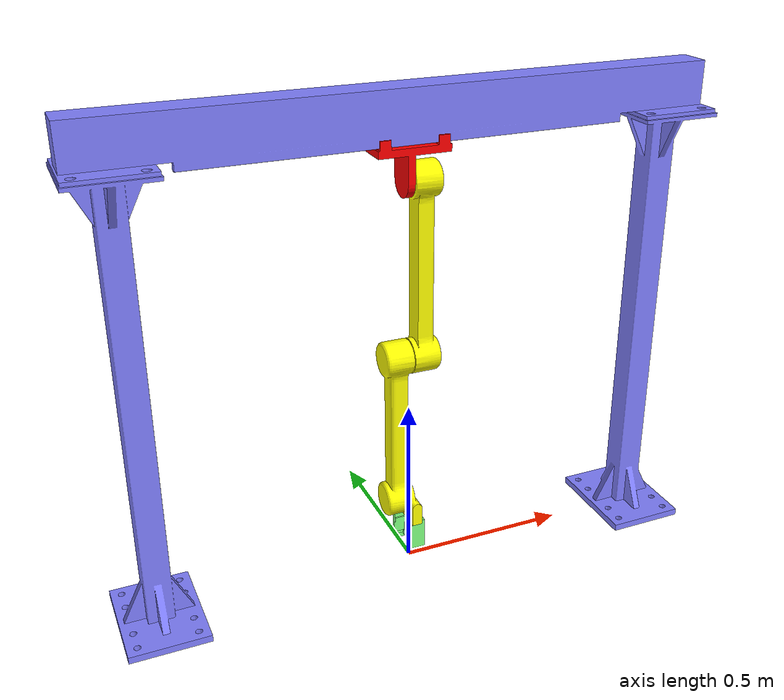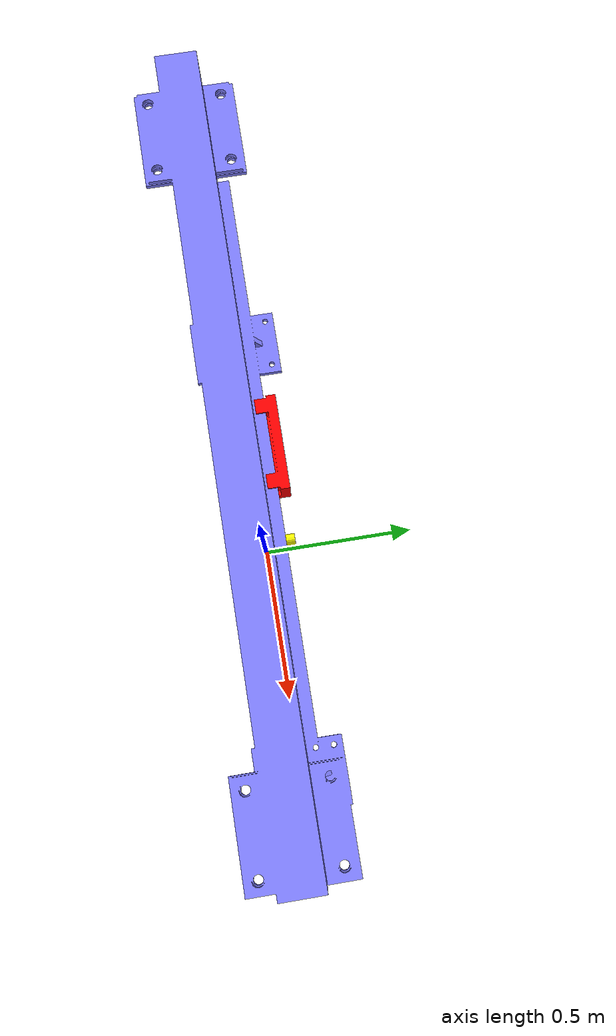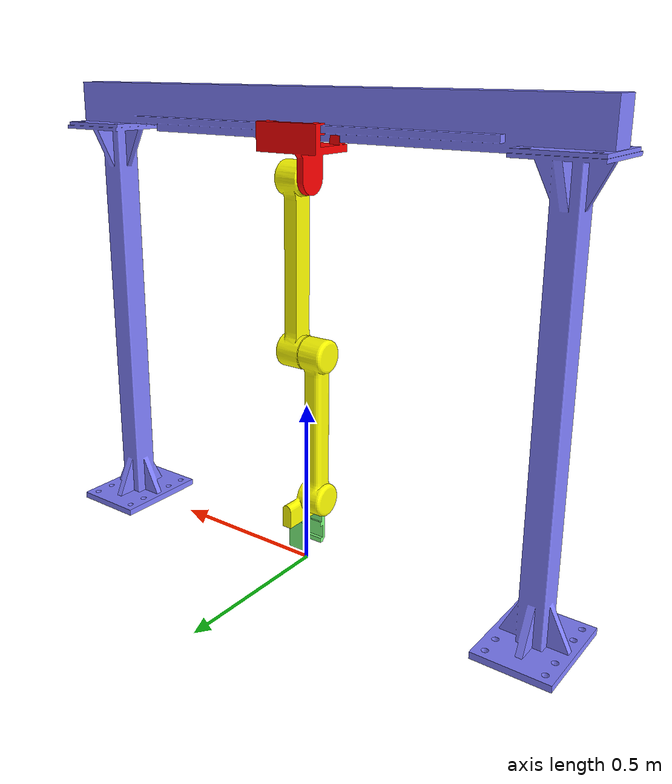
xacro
<?xml version="1.0" encoding="UTF-8" ?>

<robot name="throwing_robot" xmlns:xacro="http://www.ros.org/wiki/xacro">

  <xacro:include filename="$(find throwing_robot)/urdf/throwing_robot.gazebo" />
  <!-- Used for fixing robot to Gazebo 'base_link' -->
  <link name="world" />

  <joint name="fixed" type="fixed">
    <parent link="world" />
    <child link="base_link" />
  </joint>

  <link name="base_link">
    <inertial>
      <origin xyz="7.7225E-17 0.00093487 0.97432" rpy="0 0 0" />
      <mass value="138.01" />
      <inertia ixx="30.971" ixy="0.030675" ixz="12.599" iyy="60.342" iyz="-0.030832" izz="30.009" />
    </inertial>
    <visual>
      <origin xyz="0 0 0" rpy="0 0 0" />
      <geometry>
        <mesh filename="package://throwing_robot/meshes/base_link.STL" />
      </geometry>
      <material name="">
        <color rgba="0.50196 0.50196 1 1" />
      </material>
    </visual>
    <collision>
      <origin xyz="0 0 0" rpy="0 0 0" />
      <geometry>
        <mesh filename="package://throwing_robot/meshes/base_link.STL" />
      </geometry>
    </collision>
  </link>
  <link name="slider_link">
    <inertial>
      <origin xyz="-0.0013541 0.032919 0.0059959" rpy="0 0 0" />
      <mass value="8.4074" />
      <inertia ixx="0.030564" ixy="-0.00036594" ixz="-0.00060771" iyy="0.037545" iyz="-0.0079971" izz="0.039782" />
    </inertial>
    <visual>
      <origin xyz="0 0 0" rpy="0 0 0" />
      <geometry>
        <mesh filename="package://throwing_robot/meshes/slider_link.STL" />
      </geometry>
      <material name="">
        <color rgba="1 0 0 1" />
      </material>
    </visual>
    <collision>
      <origin xyz="0 0 0" rpy="0 0 0" />
      <geometry>
        <mesh filename="package://throwing_robot/meshes/slider_link.STL" />
      </geometry>
    </collision>
  </link>
  <joint name="P1" type="prismatic">
    <origin xyz="0 0 1.24" rpy="0 0 0" />
    <parent link="base_link" />
    <child link="slider_link" />
    <axis xyz="1 0 0" />
    <limit lower="-0.5" upper="0.5" effort="1000" velocity="1000" />
    <dynamics damping="0.2" friction="0.2" />
  </joint>
  <link name="link_1">
    <inertial>
      <origin xyz="0.039014 1.4608E-18 -0.25606" rpy="0 0 0" />
      <mass value="19.055" />
      <inertia ixx="0.7527" ixy="-9.2485E-19" ixz="-0.0044867" iyy="0.75156" iyz="1.1809E-17" izz="0.01639" />
    </inertial>
    <visual>
      <origin xyz="0 0 0" rpy="0 0 0" />
      <geometry>
        <mesh filename="package://throwing_robot/meshes/link_1.STL" />
      </geometry>
      <material name="">
        <color rgba="1 1 0 1" />
      </material>
    </visual>
    <collision>
      <origin xyz="0 0 0" rpy="0 0 0" />
      <geometry>
        <mesh filename="package://throwing_robot/meshes/link_1.STL" />
      </geometry>
    </collision>
  </link>
  <joint name="R1" type="revolute">
    <origin xyz="0 0 -0.075" rpy="0 0 0" />
    <parent link="slider_link" />
    <child link="link_1" />
    <axis xyz="-1 0 0" />
    <limit lower="-3.14" upper="3.14" effort="1000" velocity="1000" />
    <dynamics damping="0.2" friction="0.2" />
  </joint>
  <link name="link_2">
    <inertial>
      <origin xyz="-0.035673 0.0020621 -0.25345" rpy="0 0 0" />
      <mass value="19.624" />
      <inertia ixx="0.70653" ixy="-0.0014436" ixz="0.019658" iyy="0.70195" iyz="0.0093093" izz="0.023988" />
    </inertial>
    <visual>
      <origin xyz="0 0 0" rpy="0 0 0" />
      <geometry>
        <mesh filename="package://throwing_robot/meshes/link_2.STL" />
      </geometry>
      <material name="">
        <color rgba="1 1 0 1" />
      </material>
    </visual>
    <collision>
      <origin xyz="0 0 0" rpy="0 0 0" />
      <geometry>
        <mesh filename="package://throwing_robot/meshes/link_2.STL" />
      </geometry>
    </collision>
  </link>
  <joint name="R2" type="revolute">
    <origin xyz="0 0 -0.5" rpy="0 0 0" />
    <parent link="link_1" />
    <child link="link_2" />
    <axis xyz="-1 0 0" />
    <limit lower="-3.14" upper="3.14" effort="1000" velocity="1000" />
    <dynamics damping="0.2" friction="0.2" />
  </joint>
  <link name="finger_1">
    <inertial>
      <origin xyz="2.7311E-17 0.042014 0.019387" rpy="0 0 0" />
      <mass value="0.68589" />
      <inertia ixx="0.00067063" ixy="3.7499E-21" ixz="-7.5041E-20" iyy="0.00085141" iyz="-9.5097E-06" izz="0.00021618" />
    </inertial>
    <visual>
      <origin xyz="0 0 0" rpy="0 0 0" />
      <geometry>
        <mesh filename="package://throwing_robot/meshes/finger_1.STL" />
      </geometry>
      <material name="">
        <color rgba="0.50196 1 0.50196 1" />
      </material>
    </visual>
    <collision>
      <origin xyz="0 0 0" rpy="0 0 0" />
      <geometry>
        <mesh filename="package://throwing_robot/meshes/finger_1.STL" />
      </geometry>
    </collision>
  </link>
  <joint name="P2" type="prismatic">
    <origin xyz="0 0 -0.585" rpy="0 0 0" />
    <parent link="link_2" />
    <child link="finger_1" />
    <axis xyz="0 1 0" />
    <limit lower="0" upper="0.04" effort="1000" velocity="1000" />
    <dynamics damping="0.2" friction="0.2" />
  </joint>
  <link name="finger_2">
    <inertial>
      <origin xyz="9.273E-17 -0.042014 0.019387" rpy="0 0 0" />
      <mass value="0.68589" />
      <inertia ixx="0.00067063" ixy="-8.4321E-21" ixz="4.6544E-19" iyy="0.00085141" iyz="9.5097E-06" izz="0.00021618" />
    </inertial>
    <visual>
      <origin xyz="0 0 0" rpy="0 0 0" />
      <geometry>
        <mesh filename="package://throwing_robot/meshes/finger_2.STL" />
      </geometry>
      <material name="">
        <color rgba="0.50196 1 0.50196 1" />
      </material>
    </visual>
    <collision>
      <origin xyz="0 0 0" rpy="0 0 0" />
      <geometry>
        <mesh filename="package://throwing_robot/meshes/finger_2.STL" />
      </geometry>
    </collision>
  </link>
  <joint name="F1" type="fixed">
    <origin xyz="0 0 -0.585" rpy="0 0 0" />
    <parent link="link_2" />
    <child link="finger_2" />
    <axis xyz="0 0 0" />
    <limit lower="0" upper="0" effort="1000" velocity="1000" />
  </joint>

  <transmission name="tran1">
    <type>transmission_interface/SimpleTransmission</type>
    <joint name="P1">
      <hardwareInterface>hardware_interface/EffortJointInterface</hardwareInterface>
    </joint>
    <actuator name="motor1">
      <hardwareInterface>hardware_interface/EffortJointInterface</hardwareInterface>
      <mechanicalReduction>1</mechanicalReduction>
    </actuator>
  </transmission>

  <transmission name="tran2">
    <type>transmission_interface/SimpleTransmission</type>
    <joint name="R1">
      <hardwareInterface>hardware_interface/EffortJointInterface</hardwareInterface>
    </joint>
    <actuator name="motor2">
      <hardwareInterface>hardware_interface/EffortJointInterface</hardwareInterface>
      <mechanicalReduction>1</mechanicalReduction>
    </actuator>
  </transmission>

  <transmission name="tran3">
    <type>transmission_interface/SimpleTransmission</type>
    <joint name="R2">
      <hardwareInterface>hardware_interface/EffortJointInterface</hardwareInterface>
    </joint>
    <actuator name="motor3">
      <hardwareInterface>hardware_interface/EffortJointInterface</hardwareInterface>
      <mechanicalReduction>1</mechanicalReduction>
    </actuator>
  </transmission>

  <transmission name="tran4">
    <type>transmission_interface/SimpleTransmission</type>
    <joint name="P2">
      <hardwareInterface>hardware_interface/EffortJointInterface</hardwareInterface>
    </joint>
    <actuator name="motor4">
      <hardwareInterface>hardware_interface/EffortJointInterface</hardwareInterface>
      <mechanicalReduction>1</mechanicalReduction>
    </actuator>
  </transmission>

</robot>
